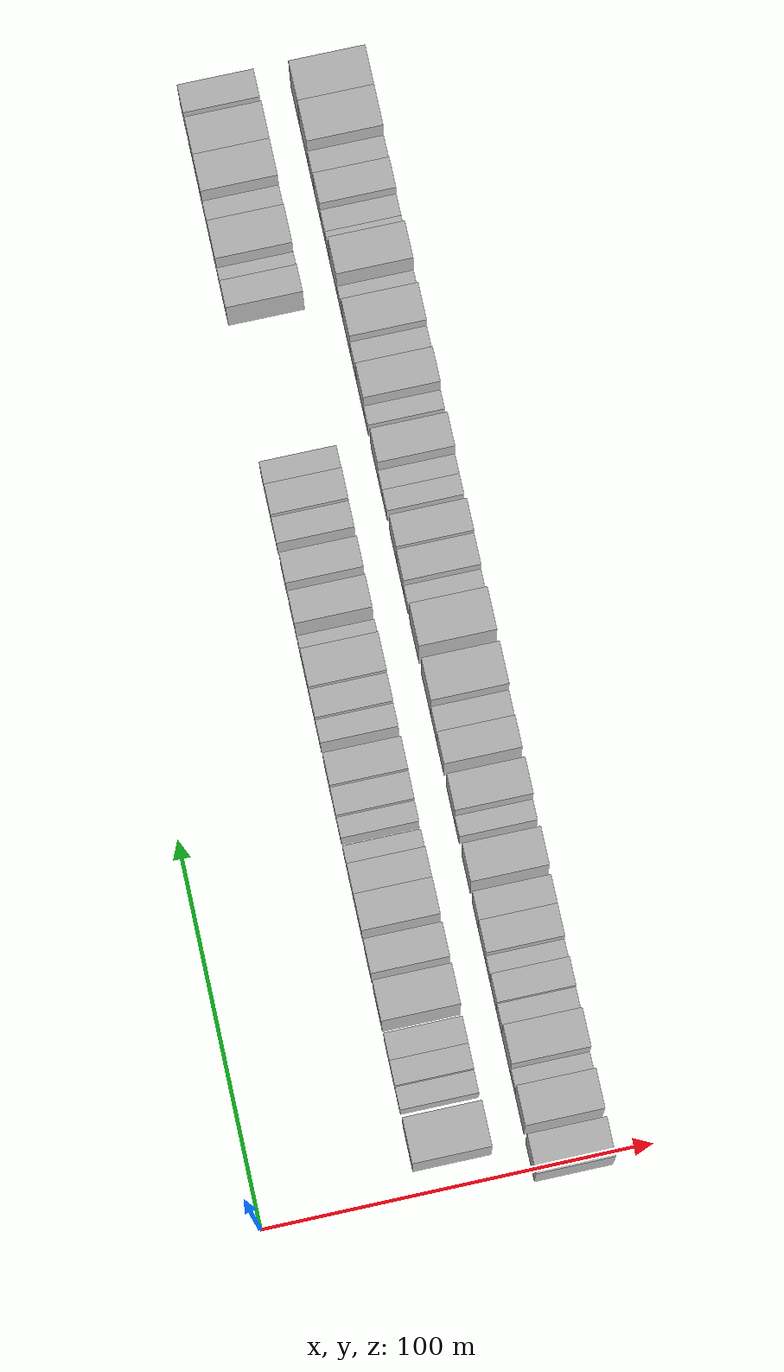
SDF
<sdf version="1.6">
 <world name="default">
  <model name="building_32">
   <static>1</static>
   <pose>50.0000 11.7142 0 0.000000 0.000000 0.000000</pose>
   <link name="link">
    <pose>0 0 12.00 0 0 0</pose>
    <collision name="collision"><geometry><box><size>20.0000 11.5697 24.0000</size></box></geometry></collision>
    <visual name="visual">
     <cast_shadows>0</cast_shadows>
     <geometry><box><size>20.0000 11.5697 24.0000</size></box></geometry>
     <material>
      <script>
       <uri>model://HANNAS_wall/materials/scripts</uri>
       <uri>model://HANNAS_wall/materials/textures</uri>
       <name>vrc/HANNAS_wall</name>
      </script>
     </material>
    </visual>
   </link>
  </model>
  <model name="building_33">
   <static>1</static>
   <pose>50.0000 23.4167 0 0.000000 0.000000 0.000000</pose>
   <link name="link">
    <pose>0 0 6.00 0 0 0</pose>
    <collision name="collision"><geometry><box><size>20.0000 5.8353 12.0000</size></box></geometry></collision>
    <visual name="visual">
     <cast_shadows>0</cast_shadows>
     <geometry><box><size>20.0000 5.8353 12.0000</size></box></geometry>
     <material>
      <script>
       <uri>model://HANNAS_wall/materials/scripts</uri>
       <uri>model://HANNAS_wall/materials/textures</uri>
       <name>vrc/HANNAS_wall</name>
      </script>
     </material>
    </visual>
   </link>
  </model>
  <model name="building_34">
   <static>1</static>
   <pose>50.0000 29.5625 0 0.000000 0.000000 0.000000</pose>
   <link name="link">
    <pose>0 0 7.50 0 0 0</pose>
    <collision name="collision"><geometry><box><size>20.0000 6.4564 15.0000</size></box></geometry></collision>
    <visual name="visual">
     <cast_shadows>0</cast_shadows>
     <geometry><box><size>20.0000 6.4564 15.0000</size></box></geometry>
     <material>
      <script>
       <uri>model://HANNAS_wall/materials/scripts</uri>
       <uri>model://HANNAS_wall/materials/textures</uri>
       <name>vrc/HANNAS_wall</name>
      </script>
     </material>
    </visual>
   </link>
  </model>
  <model name="building_35">
   <static>1</static>
   <pose>50.0000 36.2377 0 0.000000 0.000000 0.000000</pose>
   <link name="link">
    <pose>0 0 7.50 0 0 0</pose>
    <collision name="collision"><geometry><box><size>20.0000 6.8939 15.0000</size></box></geometry></collision>
    <visual name="visual">
     <cast_shadows>0</cast_shadows>
     <geometry><box><size>20.0000 6.8939 15.0000</size></box></geometry>
     <material>
      <script>
       <uri>model://HANNAS_wall/materials/scripts</uri>
       <uri>model://HANNAS_wall/materials/textures</uri>
       <name>vrc/HANNAS_wall</name>
      </script>
     </material>
    </visual>
   </link>
  </model>
  <model name="building_36">
   <static>1</static>
   <pose>50.0000 46.8793 0 0.000000 0.000000 0.000000</pose>
   <link name="link">
    <pose>0 0 12.00 0 0 0</pose>
    <collision name="collision"><geometry><box><size>20.0000 10.3893 24.0000</size></box></geometry></collision>
    <visual name="visual">
     <cast_shadows>0</cast_shadows>
     <geometry><box><size>20.0000 10.3893 24.0000</size></box></geometry>
     <material>
      <script>
       <uri>model://HANNAS_wall/materials/scripts</uri>
       <uri>model://HANNAS_wall/materials/textures</uri>
       <name>vrc/HANNAS_wall</name>
      </script>
     </material>
    </visual>
   </link>
  </model>
  <model name="building_37">
   <static>1</static>
   <pose>50.0000 58.5164 0 0.000000 0.000000 0.000000</pose>
   <link name="link">
    <pose>0 0 10.50 0 0 0</pose>
    <collision name="collision"><geometry><box><size>20.0000 8.8849 21.0000</size></box></geometry></collision>
    <visual name="visual">
     <cast_shadows>0</cast_shadows>
     <geometry><box><size>20.0000 8.8849 21.0000</size></box></geometry>
     <material>
      <script>
       <uri>model://HANNAS_wall/materials/scripts</uri>
       <uri>model://HANNAS_wall/materials/textures</uri>
       <name>vrc/HANNAS_wall</name>
      </script>
     </material>
    </visual>
   </link>
  </model>
  <model name="building_38">
   <static>1</static>
   <pose>50.0000 69.6701 0 0.000000 0.000000 0.000000</pose>
   <link name="link">
    <pose>0 0 10.50 0 0 0</pose>
    <collision name="collision"><geometry><box><size>20.0000 9.4225 21.0000</size></box></geometry></collision>
    <visual name="visual">
     <cast_shadows>0</cast_shadows>
     <geometry><box><size>20.0000 9.4225 21.0000</size></box></geometry>
     <material>
      <script>
       <uri>model://HANNAS_wall/materials/scripts</uri>
       <uri>model://HANNAS_wall/materials/textures</uri>
       <name>vrc/HANNAS_wall</name>
      </script>
     </material>
    </visual>
   </link>
  </model>
  <model name="building_39">
   <static>1</static>
   <pose>50.0000 78.4824 0 0.000000 0.000000 0.000000</pose>
   <link name="link">
    <pose>0 0 9.00 0 0 0</pose>
    <collision name="collision"><geometry><box><size>20.0000 8.2021 18.0000</size></box></geometry></collision>
    <visual name="visual">
     <cast_shadows>0</cast_shadows>
     <geometry><box><size>20.0000 8.2021 18.0000</size></box></geometry>
     <material>
      <script>
       <uri>model://HANNAS_wall/materials/scripts</uri>
       <uri>model://HANNAS_wall/materials/textures</uri>
       <name>vrc/HANNAS_wall</name>
      </script>
     </material>
    </visual>
   </link>
  </model>
  <model name="building_40">
   <static>1</static>
   <pose>50.0000 85.2810 0 0.000000 0.000000 0.000000</pose>
   <link name="link">
    <pose>0 0 6.00 0 0 0</pose>
    <collision name="collision"><geometry><box><size>20.0000 5.3951 12.0000</size></box></geometry></collision>
    <visual name="visual">
     <cast_shadows>0</cast_shadows>
     <geometry><box><size>20.0000 5.3951 12.0000</size></box></geometry>
     <material>
      <script>
       <uri>model://HANNAS_wall/materials/scripts</uri>
       <uri>model://HANNAS_wall/materials/textures</uri>
       <name>vrc/HANNAS_wall</name>
      </script>
     </material>
    </visual>
   </link>
  </model>
  <model name="building_41">
   <static>1</static>
   <pose>50.0000 92.6717 0 0.000000 0.000000 0.000000</pose>
   <link name="link">
    <pose>0 0 6.00 0 0 0</pose>
    <collision name="collision"><geometry><box><size>20.0000 5.3864 12.0000</size></box></geometry></collision>
    <visual name="visual">
     <cast_shadows>0</cast_shadows>
     <geometry><box><size>20.0000 5.3864 12.0000</size></box></geometry>
     <material>
      <script>
       <uri>model://HANNAS_wall/materials/scripts</uri>
       <uri>model://HANNAS_wall/materials/textures</uri>
       <name>vrc/HANNAS_wall</name>
      </script>
     </material>
    </visual>
   </link>
  </model>
  <model name="building_42">
   <static>1</static>
   <pose>50.0000 98.9908 0 0.000000 0.000000 0.000000</pose>
   <link name="link">
    <pose>0 0 7.50 0 0 0</pose>
    <collision name="collision"><geometry><box><size>20.0000 7.2517 15.0000</size></box></geometry></collision>
    <visual name="visual">
     <cast_shadows>0</cast_shadows>
     <geometry><box><size>20.0000 7.2517 15.0000</size></box></geometry>
     <material>
      <script>
       <uri>model://HANNAS_wall/materials/scripts</uri>
       <uri>model://HANNAS_wall/materials/textures</uri>
       <name>vrc/HANNAS_wall</name>
      </script>
     </material>
    </visual>
   </link>
  </model>
  <model name="building_43">
   <static>1</static>
   <pose>50.0000 106.8519 0 0.000000 0.000000 0.000000</pose>
   <link name="link">
    <pose>0 0 9.00 0 0 0</pose>
    <collision name="collision"><geometry><box><size>20.0000 8.4705 18.0000</size></box></geometry></collision>
    <visual name="visual">
     <cast_shadows>0</cast_shadows>
     <geometry><box><size>20.0000 8.4705 18.0000</size></box></geometry>
     <material>
      <script>
       <uri>model://HANNAS_wall/materials/scripts</uri>
       <uri>model://HANNAS_wall/materials/textures</uri>
       <name>vrc/HANNAS_wall</name>
      </script>
     </material>
    </visual>
   </link>
  </model>
  <model name="building_44">
   <static>1</static>
   <pose>50.0000 117.1174 0 0.000000 0.000000 0.000000</pose>
   <link name="link">
    <pose>0 0 7.50 0 0 0</pose>
    <collision name="collision"><geometry><box><size>20.0000 6.0605 15.0000</size></box></geometry></collision>
    <visual name="visual">
     <cast_shadows>0</cast_shadows>
     <geometry><box><size>20.0000 6.0605 15.0000</size></box></geometry>
     <material>
      <script>
       <uri>model://HANNAS_wall/materials/scripts</uri>
       <uri>model://HANNAS_wall/materials/textures</uri>
       <name>vrc/HANNAS_wall</name>
      </script>
     </material>
    </visual>
   </link>
  </model>
  <model name="building_45">
   <static>1</static>
   <pose>50.0000 123.8608 0 0.000000 0.000000 0.000000</pose>
   <link name="link">
    <pose>0 0 9.00 0 0 0</pose>
    <collision name="collision"><geometry><box><size>20.0000 7.4264 18.0000</size></box></geometry></collision>
    <visual name="visual">
     <cast_shadows>0</cast_shadows>
     <geometry><box><size>20.0000 7.4264 18.0000</size></box></geometry>
     <material>
      <script>
       <uri>model://HANNAS_wall/materials/scripts</uri>
       <uri>model://HANNAS_wall/materials/textures</uri>
       <name>vrc/HANNAS_wall</name>
      </script>
     </material>
    </visual>
   </link>
  </model>
  <model name="building_46">
   <static>1</static>
   <pose>50.0000 132.5873 0 0.000000 0.000000 0.000000</pose>
   <link name="link">
    <pose>0 0 10.50 0 0 0</pose>
    <collision name="collision"><geometry><box><size>20.0000 10.0266 21.0000</size></box></geometry></collision>
    <visual name="visual">
     <cast_shadows>0</cast_shadows>
     <geometry><box><size>20.0000 10.0266 21.0000</size></box></geometry>
     <material>
      <script>
       <uri>model://HANNAS_wall/materials/scripts</uri>
       <uri>model://HANNAS_wall/materials/textures</uri>
       <name>vrc/HANNAS_wall</name>
      </script>
     </material>
    </visual>
   </link>
  </model>
  <model name="building_47">
   <static>1</static>
   <pose>50.0000 140.1266 0 0.000000 0.000000 0.000000</pose>
   <link name="link">
    <pose>0 0 6.00 0 0 0</pose>
    <collision name="collision"><geometry><box><size>20.0000 5.0519 12.0000</size></box></geometry></collision>
    <visual name="visual">
     <cast_shadows>0</cast_shadows>
     <geometry><box><size>20.0000 5.0519 12.0000</size></box></geometry>
     <material>
      <script>
       <uri>model://HANNAS_wall/materials/scripts</uri>
       <uri>model://HANNAS_wall/materials/textures</uri>
       <name>vrc/HANNAS_wall</name>
      </script>
     </material>
    </visual>
   </link>
  </model>
  <model name="building_48">
   <static>1</static>
   <pose>50.0000 148.9408 0 0.000000 0.000000 0.000000</pose>
   <link name="link">
    <pose>0 0 9.00 0 0 0</pose>
    <collision name="collision"><geometry><box><size>20.0000 8.5766 18.0000</size></box></geometry></collision>
    <visual name="visual">
     <cast_shadows>0</cast_shadows>
     <geometry><box><size>20.0000 8.5766 18.0000</size></box></geometry>
     <material>
      <script>
       <uri>model://HANNAS_wall/materials/scripts</uri>
       <uri>model://HANNAS_wall/materials/textures</uri>
       <name>vrc/HANNAS_wall</name>
      </script>
     </material>
    </visual>
   </link>
  </model>
  <model name="building_49">
   <static>1</static>
   <pose>50.0000 159.2718 0 0.000000 0.000000 0.000000</pose>
   <link name="link">
    <pose>0 0 9.00 0 0 0</pose>
    <collision name="collision"><geometry><box><size>20.0000 8.0853 18.0000</size></box></geometry></collision>
    <visual name="visual">
     <cast_shadows>0</cast_shadows>
     <geometry><box><size>20.0000 8.0853 18.0000</size></box></geometry>
     <material>
      <script>
       <uri>model://HANNAS_wall/materials/scripts</uri>
       <uri>model://HANNAS_wall/materials/textures</uri>
       <name>vrc/HANNAS_wall</name>
      </script>
     </material>
    </visual>
   </link>
  </model>
  <model name="building_50">
   <static>1</static>
   <pose>50.0000 169.7689 0 0.000000 0.000000 0.000000</pose>
   <link name="link">
    <pose>0 0 7.50 0 0 0</pose>
    <collision name="collision"><geometry><box><size>20.0000 6.9091 15.0000</size></box></geometry></collision>
    <visual name="visual">
     <cast_shadows>0</cast_shadows>
     <geometry><box><size>20.0000 6.9091 15.0000</size></box></geometry>
     <material>
      <script>
       <uri>model://HANNAS_wall/materials/scripts</uri>
       <uri>model://HANNAS_wall/materials/textures</uri>
       <name>vrc/HANNAS_wall</name>
      </script>
     </material>
    </visual>
   </link>
  </model>
  <model name="building_51">
   <static>1</static>
   <pose>50.0000 177.2824 0 0.000000 0.000000 0.000000</pose>
   <link name="link">
    <pose>0 0 9.00 0 0 0</pose>
    <collision name="collision"><geometry><box><size>20.0000 8.1179 18.0000</size></box></geometry></collision>
    <visual name="visual">
     <cast_shadows>0</cast_shadows>
     <geometry><box><size>20.0000 8.1179 18.0000</size></box></geometry>
     <material>
      <script>
       <uri>model://HANNAS_wall/materials/scripts</uri>
       <uri>model://HANNAS_wall/materials/textures</uri>
       <name>vrc/HANNAS_wall</name>
      </script>
     </material>
    </visual>
   </link>
  </model>
  <model name="building_52">
   <static>1</static>
   <pose>50.0000 184.6182 0 0.000000 0.000000 0.000000</pose>
   <link name="link">
    <pose>0 0 7.50 0 0 0</pose>
    <collision name="collision"><geometry><box><size>20.0000 6.5537 15.0000</size></box></geometry></collision>
    <visual name="visual">
     <cast_shadows>0</cast_shadows>
     <geometry><box><size>20.0000 6.5537 15.0000</size></box></geometry>
     <material>
      <script>
       <uri>model://HANNAS_wall/materials/scripts</uri>
       <uri>model://HANNAS_wall/materials/textures</uri>
       <name>vrc/HANNAS_wall</name>
      </script>
     </material>
    </visual>
   </link>
  </model>
  <model name="building_53">
   <static>1</static>
   <pose>50.0000 231.8629 0 0.000000 0.000000 0.000000</pose>
   <link name="link">
    <pose>0 0 9.00 0 0 0</pose>
    <collision name="collision"><geometry><box><size>20.0000 7.3119 18.0000</size></box></geometry></collision>
    <visual name="visual">
     <cast_shadows>0</cast_shadows>
     <geometry><box><size>20.0000 7.3119 18.0000</size></box></geometry>
     <material>
      <script>
       <uri>model://HANNAS_wall/materials/scripts</uri>
       <uri>model://HANNAS_wall/materials/textures</uri>
       <name>vrc/HANNAS_wall</name>
      </script>
     </material>
    </visual>
   </link>
  </model>
  <model name="building_54">
   <static>1</static>
   <pose>50.0000 238.0434 0 0.000000 0.000000 0.000000</pose>
   <link name="link">
    <pose>0 0 6.00 0 0 0</pose>
    <collision name="collision"><geometry><box><size>20.0000 5.0492 12.0000</size></box></geometry></collision>
    <visual name="visual">
     <cast_shadows>0</cast_shadows>
     <geometry><box><size>20.0000 5.0492 12.0000</size></box></geometry>
     <material>
      <script>
       <uri>model://HANNAS_wall/materials/scripts</uri>
       <uri>model://HANNAS_wall/materials/textures</uri>
       <name>vrc/HANNAS_wall</name>
      </script>
     </material>
    </visual>
   </link>
  </model>
  <model name="building_55">
   <static>1</static>
   <pose>50.0000 245.7052 0 0.000000 0.000000 0.000000</pose>
   <link name="link">
    <pose>0 0 10.50 0 0 0</pose>
    <collision name="collision"><geometry><box><size>20.0000 10.2743 21.0000</size></box></geometry></collision>
    <visual name="visual">
     <cast_shadows>0</cast_shadows>
     <geometry><box><size>20.0000 10.2743 21.0000</size></box></geometry>
     <material>
      <script>
       <uri>model://HANNAS_wall/materials/scripts</uri>
       <uri>model://HANNAS_wall/materials/textures</uri>
       <name>vrc/HANNAS_wall</name>
      </script>
     </material>
    </visual>
   </link>
  </model>
  <model name="building_56">
   <static>1</static>
   <pose>50.0000 254.3147 0 0.000000 0.000000 0.000000</pose>
   <link name="link">
    <pose>0 0 7.50 0 0 0</pose>
    <collision name="collision"><geometry><box><size>20.0000 6.9448 15.0000</size></box></geometry></collision>
    <visual name="visual">
     <cast_shadows>0</cast_shadows>
     <geometry><box><size>20.0000 6.9448 15.0000</size></box></geometry>
     <material>
      <script>
       <uri>model://HANNAS_wall/materials/scripts</uri>
       <uri>model://HANNAS_wall/materials/textures</uri>
       <name>vrc/HANNAS_wall</name>
      </script>
     </material>
    </visual>
   </link>
  </model>
  <model name="building_57">
   <static>1</static>
   <pose>50.0000 262.7760 0 0.000000 0.000000 0.000000</pose>
   <link name="link">
    <pose>0 0 12.00 0 0 0</pose>
    <collision name="collision"><geometry><box><size>20.0000 9.9779 24.0000</size></box></geometry></collision>
    <visual name="visual">
     <cast_shadows>0</cast_shadows>
     <geometry><box><size>20.0000 9.9779 24.0000</size></box></geometry>
     <material>
      <script>
       <uri>model://HANNAS_wall/materials/scripts</uri>
       <uri>model://HANNAS_wall/materials/textures</uri>
       <name>vrc/HANNAS_wall</name>
      </script>
     </material>
    </visual>
   </link>
  </model>
  <model name="building_58">
   <static>1</static>
   <pose>50.0000 272.8071 0 0.000000 0.000000 0.000000</pose>
   <link name="link">
    <pose>0 0 12.00 0 0 0</pose>
    <collision name="collision"><geometry><box><size>20.0000 10.0843 24.0000</size></box></geometry></collision>
    <visual name="visual">
     <cast_shadows>0</cast_shadows>
     <geometry><box><size>20.0000 10.0843 24.0000</size></box></geometry>
     <material>
      <script>
       <uri>model://HANNAS_wall/materials/scripts</uri>
       <uri>model://HANNAS_wall/materials/textures</uri>
       <name>vrc/HANNAS_wall</name>
      </script>
     </material>
    </visual>
   </link>
  </model>
  <model name="building_59">
   <static>1</static>
   <pose>50.0000 284.6481 0 0.000000 0.000000 0.000000</pose>
   <link name="link">
    <pose>0 0 9.00 0 0 0</pose>
    <collision name="collision"><geometry><box><size>20.0000 7.5978 18.0000</size></box></geometry></collision>
    <visual name="visual">
     <cast_shadows>0</cast_shadows>
     <geometry><box><size>20.0000 7.5978 18.0000</size></box></geometry>
     <material>
      <script>
       <uri>model://HANNAS_wall/materials/scripts</uri>
       <uri>model://HANNAS_wall/materials/textures</uri>
       <name>vrc/HANNAS_wall</name>
      </script>
     </material>
    </visual>
   </link>
  </model>
  <model name="building_90">
   <static>1</static>
   <pose>79.0000 2.0427 0 0.000000 0.000000 0.000000</pose>
   <link name="link">
    <pose>0 0 12.00 0 0 0</pose>
    <collision name="collision"><geometry><box><size>20.0000 10.0423 24.0000</size></box></geometry></collision>
    <visual name="visual">
     <cast_shadows>0</cast_shadows>
     <geometry><box><size>20.0000 10.0423 24.0000</size></box></geometry>
     <material>
      <script>
       <uri>model://HANNAS_wall/materials/scripts</uri>
       <uri>model://HANNAS_wall/materials/textures</uri>
       <name>vrc/HANNAS_wall</name>
      </script>
     </material>
    </visual>
   </link>
  </model>
  <model name="building_91">
   <static>1</static>
   <pose>79.0000 14.1333 0 0.000000 0.000000 0.000000</pose>
   <link name="link">
    <pose>0 0 12.00 0 0 0</pose>
    <collision name="collision"><geometry><box><size>20.0000 10.1388 24.0000</size></box></geometry></collision>
    <visual name="visual">
     <cast_shadows>0</cast_shadows>
     <geometry><box><size>20.0000 10.1388 24.0000</size></box></geometry>
     <material>
      <script>
       <uri>model://HANNAS_wall/materials/scripts</uri>
       <uri>model://HANNAS_wall/materials/textures</uri>
       <name>vrc/HANNAS_wall</name>
      </script>
     </material>
    </visual>
   </link>
  </model>
  <model name="building_92">
   <static>1</static>
   <pose>79.0000 21.8661 0 0.000000 0.000000 0.000000</pose>
   <link name="link">
    <pose>0 0 6.00 0 0 0</pose>
    <collision name="collision"><geometry><box><size>20.0000 5.3268 12.0000</size></box></geometry></collision>
    <visual name="visual">
     <cast_shadows>0</cast_shadows>
     <geometry><box><size>20.0000 5.3268 12.0000</size></box></geometry>
     <material>
      <script>
       <uri>model://HANNAS_wall/materials/scripts</uri>
       <uri>model://HANNAS_wall/materials/textures</uri>
       <name>vrc/HANNAS_wall</name>
      </script>
     </material>
    </visual>
   </link>
  </model>
  <model name="building_93">
   <static>1</static>
   <pose>79.0000 29.5009 0 0.000000 0.000000 0.000000</pose>
   <link name="link">
    <pose>0 0 12.00 0 0 0</pose>
    <collision name="collision"><geometry><box><size>20.0000 9.9429 24.0000</size></box></geometry></collision>
    <visual name="visual">
     <cast_shadows>0</cast_shadows>
     <geometry><box><size>20.0000 9.9429 24.0000</size></box></geometry>
     <material>
      <script>
       <uri>model://HANNAS_wall/materials/scripts</uri>
       <uri>model://HANNAS_wall/materials/textures</uri>
       <name>vrc/HANNAS_wall</name>
      </script>
     </material>
    </visual>
   </link>
  </model>
  <model name="building_94">
   <static>1</static>
   <pose>79.0000 37.6089 0 0.000000 0.000000 0.000000</pose>
   <link name="link">
    <pose>0 0 7.50 0 0 0</pose>
    <collision name="collision"><geometry><box><size>20.0000 6.2732 15.0000</size></box></geometry></collision>
    <visual name="visual">
     <cast_shadows>0</cast_shadows>
     <geometry><box><size>20.0000 6.2732 15.0000</size></box></geometry>
     <material>
      <script>
       <uri>model://HANNAS_wall/materials/scripts</uri>
       <uri>model://HANNAS_wall/materials/textures</uri>
       <name>vrc/HANNAS_wall</name>
      </script>
     </material>
    </visual>
   </link>
  </model>
  <model name="building_95">
   <static>1</static>
   <pose>79.0000 44.4142 0 0.000000 0.000000 0.000000</pose>
   <link name="link">
    <pose>0 0 9.00 0 0 0</pose>
    <collision name="collision"><geometry><box><size>20.0000 7.3374 18.0000</size></box></geometry></collision>
    <visual name="visual">
     <cast_shadows>0</cast_shadows>
     <geometry><box><size>20.0000 7.3374 18.0000</size></box></geometry>
     <material>
      <script>
       <uri>model://HANNAS_wall/materials/scripts</uri>
       <uri>model://HANNAS_wall/materials/textures</uri>
       <name>vrc/HANNAS_wall</name>
      </script>
     </material>
    </visual>
   </link>
  </model>
  <model name="building_96">
   <static>1</static>
   <pose>79.0000 50.7081 0 0.000000 0.000000 0.000000</pose>
   <link name="link">
    <pose>0 0 6.00 0 0 0</pose>
    <collision name="collision"><geometry><box><size>20.0000 5.2504 12.0000</size></box></geometry></collision>
    <visual name="visual">
     <cast_shadows>0</cast_shadows>
     <geometry><box><size>20.0000 5.2504 12.0000</size></box></geometry>
     <material>
      <script>
       <uri>model://HANNAS_wall/materials/scripts</uri>
       <uri>model://HANNAS_wall/materials/textures</uri>
       <name>vrc/HANNAS_wall</name>
      </script>
     </material>
    </visual>
   </link>
  </model>
  <model name="building_97">
   <static>1</static>
   <pose>79.0000 57.5254 0 0.000000 0.000000 0.000000</pose>
   <link name="link">
    <pose>0 0 9.00 0 0 0</pose>
    <collision name="collision"><geometry><box><size>20.0000 8.3843 18.0000</size></box></geometry></collision>
    <visual name="visual">
     <cast_shadows>0</cast_shadows>
     <geometry><box><size>20.0000 8.3843 18.0000</size></box></geometry>
     <material>
      <script>
       <uri>model://HANNAS_wall/materials/scripts</uri>
       <uri>model://HANNAS_wall/materials/textures</uri>
       <name>vrc/HANNAS_wall</name>
      </script>
     </material>
    </visual>
   </link>
  </model>
  <model name="building_98">
   <static>1</static>
   <pose>79.0000 65.3954 0 0.000000 0.000000 0.000000</pose>
   <link name="link">
    <pose>0 0 9.00 0 0 0</pose>
    <collision name="collision"><geometry><box><size>20.0000 7.3556 18.0000</size></box></geometry></collision>
    <visual name="visual">
     <cast_shadows>0</cast_shadows>
     <geometry><box><size>20.0000 7.3556 18.0000</size></box></geometry>
     <material>
      <script>
       <uri>model://HANNAS_wall/materials/scripts</uri>
       <uri>model://HANNAS_wall/materials/textures</uri>
       <name>vrc/HANNAS_wall</name>
      </script>
     </material>
    </visual>
   </link>
  </model>
  <model name="building_99">
   <static>1</static>
   <pose>79.0000 76.0162 0 0.000000 0.000000 0.000000</pose>
   <link name="link">
    <pose>0 0 10.50 0 0 0</pose>
    <collision name="collision"><geometry><box><size>20.0000 9.8861 21.0000</size></box></geometry></collision>
    <visual name="visual">
     <cast_shadows>0</cast_shadows>
     <geometry><box><size>20.0000 9.8861 21.0000</size></box></geometry>
     <material>
      <script>
       <uri>model://HANNAS_wall/materials/scripts</uri>
       <uri>model://HANNAS_wall/materials/textures</uri>
       <name>vrc/HANNAS_wall</name>
      </script>
     </material>
    </visual>
   </link>
  </model>
  <model name="building_100">
   <static>1</static>
   <pose>79.0000 86.6463 0 0.000000 0.000000 0.000000</pose>
   <link name="link">
    <pose>0 0 6.00 0 0 0</pose>
    <collision name="collision"><geometry><box><size>20.0000 5.3741 12.0000</size></box></geometry></collision>
    <visual name="visual">
     <cast_shadows>0</cast_shadows>
     <geometry><box><size>20.0000 5.3741 12.0000</size></box></geometry>
     <material>
      <script>
       <uri>model://HANNAS_wall/materials/scripts</uri>
       <uri>model://HANNAS_wall/materials/textures</uri>
       <name>vrc/HANNAS_wall</name>
      </script>
     </material>
    </visual>
   </link>
  </model>
  <model name="building_101">
   <static>1</static>
   <pose>79.0000 94.0636 0 0.000000 0.000000 0.000000</pose>
   <link name="link">
    <pose>0 0 10.50 0 0 0</pose>
    <collision name="collision"><geometry><box><size>20.0000 9.4604 21.0000</size></box></geometry></collision>
    <visual name="visual">
     <cast_shadows>0</cast_shadows>
     <geometry><box><size>20.0000 9.4604 21.0000</size></box></geometry>
     <material>
      <script>
       <uri>model://HANNAS_wall/materials/scripts</uri>
       <uri>model://HANNAS_wall/materials/textures</uri>
       <name>vrc/HANNAS_wall</name>
      </script>
     </material>
    </visual>
   </link>
  </model>
  <model name="building_102">
   <static>1</static>
   <pose>79.0000 105.9681 0 0.000000 0.000000 0.000000</pose>
   <link name="link">
    <pose>0 0 9.00 0 0 0</pose>
    <collision name="collision"><geometry><box><size>20.0000 8.3485 18.0000</size></box></geometry></collision>
    <visual name="visual">
     <cast_shadows>0</cast_shadows>
     <geometry><box><size>20.0000 8.3485 18.0000</size></box></geometry>
     <material>
      <script>
       <uri>model://HANNAS_wall/materials/scripts</uri>
       <uri>model://HANNAS_wall/materials/textures</uri>
       <name>vrc/HANNAS_wall</name>
      </script>
     </material>
    </visual>
   </link>
  </model>
  <model name="building_103">
   <static>1</static>
   <pose>79.0000 113.6608 0 0.000000 0.000000 0.000000</pose>
   <link name="link">
    <pose>0 0 7.50 0 0 0</pose>
    <collision name="collision"><geometry><box><size>20.0000 7.0369 15.0000</size></box></geometry></collision>
    <visual name="visual">
     <cast_shadows>0</cast_shadows>
     <geometry><box><size>20.0000 7.0369 15.0000</size></box></geometry>
     <material>
      <script>
       <uri>model://HANNAS_wall/materials/scripts</uri>
       <uri>model://HANNAS_wall/materials/textures</uri>
       <name>vrc/HANNAS_wall</name>
      </script>
     </material>
    </visual>
   </link>
  </model>
  <model name="building_104">
   <static>1</static>
   <pose>79.0000 122.7035 0 0.000000 0.000000 0.000000</pose>
   <link name="link">
    <pose>0 0 12.00 0 0 0</pose>
    <collision name="collision"><geometry><box><size>20.0000 11.0485 24.0000</size></box></geometry></collision>
    <visual name="visual">
     <cast_shadows>0</cast_shadows>
     <geometry><box><size>20.0000 11.0485 24.0000</size></box></geometry>
     <material>
      <script>
       <uri>model://HANNAS_wall/materials/scripts</uri>
       <uri>model://HANNAS_wall/materials/textures</uri>
       <name>vrc/HANNAS_wall</name>
      </script>
     </material>
    </visual>
   </link>
  </model>
  <model name="building_105">
   <static>1</static>
   <pose>79.0000 136.8146 0 0.000000 0.000000 0.000000</pose>
   <link name="link">
    <pose>0 0 12.00 0 0 0</pose>
    <collision name="collision"><geometry><box><size>20.0000 11.1739 24.0000</size></box></geometry></collision>
    <visual name="visual">
     <cast_shadows>0</cast_shadows>
     <geometry><box><size>20.0000 11.1739 24.0000</size></box></geometry>
     <material>
      <script>
       <uri>model://HANNAS_wall/materials/scripts</uri>
       <uri>model://HANNAS_wall/materials/textures</uri>
       <name>vrc/HANNAS_wall</name>
      </script>
     </material>
    </visual>
   </link>
  </model>
  <model name="building_106">
   <static>1</static>
   <pose>79.0000 146.9332 0 0.000000 0.000000 0.000000</pose>
   <link name="link">
    <pose>0 0 6.00 0 0 0</pose>
    <collision name="collision"><geometry><box><size>20.0000 5.0632 12.0000</size></box></geometry></collision>
    <visual name="visual">
     <cast_shadows>0</cast_shadows>
     <geometry><box><size>20.0000 5.0632 12.0000</size></box></geometry>
     <material>
      <script>
       <uri>model://HANNAS_wall/materials/scripts</uri>
       <uri>model://HANNAS_wall/materials/textures</uri>
       <name>vrc/HANNAS_wall</name>
      </script>
     </material>
    </visual>
   </link>
  </model>
  <model name="building_107">
   <static>1</static>
   <pose>79.0000 153.6059 0 0.000000 0.000000 0.000000</pose>
   <link name="link">
    <pose>0 0 9.00 0 0 0</pose>
    <collision name="collision"><geometry><box><size>20.0000 8.2823 18.0000</size></box></geometry></collision>
    <visual name="visual">
     <cast_shadows>0</cast_shadows>
     <geometry><box><size>20.0000 8.2823 18.0000</size></box></geometry>
     <material>
      <script>
       <uri>model://HANNAS_wall/materials/scripts</uri>
       <uri>model://HANNAS_wall/materials/textures</uri>
       <name>vrc/HANNAS_wall</name>
      </script>
     </material>
    </visual>
   </link>
  </model>
  <model name="building_108">
   <static>1</static>
   <pose>79.0000 161.9780 0 0.000000 0.000000 0.000000</pose>
   <link name="link">
    <pose>0 0 10.50 0 0 0</pose>
    <collision name="collision"><geometry><box><size>20.0000 8.4619 21.0000</size></box></geometry></collision>
    <visual name="visual">
     <cast_shadows>0</cast_shadows>
     <geometry><box><size>20.0000 8.4619 21.0000</size></box></geometry>
     <material>
      <script>
       <uri>model://HANNAS_wall/materials/scripts</uri>
       <uri>model://HANNAS_wall/materials/textures</uri>
       <name>vrc/HANNAS_wall</name>
      </script>
     </material>
    </visual>
   </link>
  </model>
  <model name="building_109">
   <static>1</static>
   <pose>79.0000 171.9873 0 0.000000 0.000000 0.000000</pose>
   <link name="link">
    <pose>0 0 6.00 0 0 0</pose>
    <collision name="collision"><geometry><box><size>20.0000 5.5567 12.0000</size></box></geometry></collision>
    <visual name="visual">
     <cast_shadows>0</cast_shadows>
     <geometry><box><size>20.0000 5.5567 12.0000</size></box></geometry>
     <material>
      <script>
       <uri>model://HANNAS_wall/materials/scripts</uri>
       <uri>model://HANNAS_wall/materials/textures</uri>
       <name>vrc/HANNAS_wall</name>
      </script>
     </material>
    </visual>
   </link>
  </model>
  <model name="building_110">
   <static>1</static>
   <pose>79.0000 177.3625 0 0.000000 0.000000 0.000000</pose>
   <link name="link">
    <pose>0 0 6.00 0 0 0</pose>
    <collision name="collision"><geometry><box><size>20.0000 5.1935 12.0000</size></box></geometry></collision>
    <visual name="visual">
     <cast_shadows>0</cast_shadows>
     <geometry><box><size>20.0000 5.1935 12.0000</size></box></geometry>
     <material>
      <script>
       <uri>model://HANNAS_wall/materials/scripts</uri>
       <uri>model://HANNAS_wall/materials/textures</uri>
       <name>vrc/HANNAS_wall</name>
      </script>
     </material>
    </visual>
   </link>
  </model>
  <model name="building_111">
   <static>1</static>
   <pose>79.0000 184.4590 0 0.000000 0.000000 0.000000</pose>
   <link name="link">
    <pose>0 0 10.50 0 0 0</pose>
    <collision name="collision"><geometry><box><size>20.0000 8.9995 21.0000</size></box></geometry></collision>
    <visual name="visual">
     <cast_shadows>0</cast_shadows>
     <geometry><box><size>20.0000 8.9995 21.0000</size></box></geometry>
     <material>
      <script>
       <uri>model://HANNAS_wall/materials/scripts</uri>
       <uri>model://HANNAS_wall/materials/textures</uri>
       <name>vrc/HANNAS_wall</name>
      </script>
     </material>
    </visual>
   </link>
  </model>
  <model name="building_112">
   <static>1</static>
   <pose>79.0000 194.5146 0 0.000000 0.000000 0.000000</pose>
   <link name="link">
    <pose>0 0 6.00 0 0 0</pose>
    <collision name="collision"><geometry><box><size>20.0000 5.1118 12.0000</size></box></geometry></collision>
    <visual name="visual">
     <cast_shadows>0</cast_shadows>
     <geometry><box><size>20.0000 5.1118 12.0000</size></box></geometry>
     <material>
      <script>
       <uri>model://HANNAS_wall/materials/scripts</uri>
       <uri>model://HANNAS_wall/materials/textures</uri>
       <name>vrc/HANNAS_wall</name>
      </script>
     </material>
    </visual>
   </link>
  </model>
  <model name="building_113">
   <static>1</static>
   <pose>79.0000 201.7091 0 0.000000 0.000000 0.000000</pose>
   <link name="link">
    <pose>0 0 10.50 0 0 0</pose>
    <collision name="collision"><geometry><box><size>20.0000 9.2771 21.0000</size></box></geometry></collision>
    <visual name="visual">
     <cast_shadows>0</cast_shadows>
     <geometry><box><size>20.0000 9.2771 21.0000</size></box></geometry>
     <material>
      <script>
       <uri>model://HANNAS_wall/materials/scripts</uri>
       <uri>model://HANNAS_wall/materials/textures</uri>
       <name>vrc/HANNAS_wall</name>
      </script>
     </material>
    </visual>
   </link>
  </model>
  <model name="building_114">
   <static>1</static>
   <pose>79.0000 209.8970 0 0.000000 0.000000 0.000000</pose>
   <link name="link">
    <pose>0 0 7.50 0 0 0</pose>
    <collision name="collision"><geometry><box><size>20.0000 7.0987 15.0000</size></box></geometry></collision>
    <visual name="visual">
     <cast_shadows>0</cast_shadows>
     <geometry><box><size>20.0000 7.0987 15.0000</size></box></geometry>
     <material>
      <script>
       <uri>model://HANNAS_wall/materials/scripts</uri>
       <uri>model://HANNAS_wall/materials/textures</uri>
       <name>vrc/HANNAS_wall</name>
      </script>
     </material>
    </visual>
   </link>
  </model>
  <model name="building_115">
   <static>1</static>
   <pose>79.0000 218.4565 0 0.000000 0.000000 0.000000</pose>
   <link name="link">
    <pose>0 0 10.50 0 0 0</pose>
    <collision name="collision"><geometry><box><size>20.0000 10.0203 21.0000</size></box></geometry></collision>
    <visual name="visual">
     <cast_shadows>0</cast_shadows>
     <geometry><box><size>20.0000 10.0203 21.0000</size></box></geometry>
     <material>
      <script>
       <uri>model://HANNAS_wall/materials/scripts</uri>
       <uri>model://HANNAS_wall/materials/textures</uri>
       <name>vrc/HANNAS_wall</name>
      </script>
     </material>
    </visual>
   </link>
  </model>
  <model name="building_116">
   <static>1</static>
   <pose>79.0000 226.3455 0 0.000000 0.000000 0.000000</pose>
   <link name="link">
    <pose>0 0 6.00 0 0 0</pose>
    <collision name="collision"><geometry><box><size>20.0000 5.7576 12.0000</size></box></geometry></collision>
    <visual name="visual">
     <cast_shadows>0</cast_shadows>
     <geometry><box><size>20.0000 5.7576 12.0000</size></box></geometry>
     <material>
      <script>
       <uri>model://HANNAS_wall/materials/scripts</uri>
       <uri>model://HANNAS_wall/materials/textures</uri>
       <name>vrc/HANNAS_wall</name>
      </script>
     </material>
    </visual>
   </link>
  </model>
  <model name="building_117">
   <static>1</static>
   <pose>79.0000 234.1954 0 0.000000 0.000000 0.000000</pose>
   <link name="link">
    <pose>0 0 12.00 0 0 0</pose>
    <collision name="collision"><geometry><box><size>20.0000 9.9422 24.0000</size></box></geometry></collision>
    <visual name="visual">
     <cast_shadows>0</cast_shadows>
     <geometry><box><size>20.0000 9.9422 24.0000</size></box></geometry>
     <material>
      <script>
       <uri>model://HANNAS_wall/materials/scripts</uri>
       <uri>model://HANNAS_wall/materials/textures</uri>
       <name>vrc/HANNAS_wall</name>
      </script>
     </material>
    </visual>
   </link>
  </model>
  <model name="building_118">
   <static>1</static>
   <pose>79.0000 241.5914 0 0.000000 0.000000 0.000000</pose>
   <link name="link">
    <pose>0 0 6.00 0 0 0</pose>
    <collision name="collision"><geometry><box><size>20.0000 4.8498 12.0000</size></box></geometry></collision>
    <visual name="visual">
     <cast_shadows>0</cast_shadows>
     <geometry><box><size>20.0000 4.8498 12.0000</size></box></geometry>
     <material>
      <script>
       <uri>model://HANNAS_wall/materials/scripts</uri>
       <uri>model://HANNAS_wall/materials/textures</uri>
       <name>vrc/HANNAS_wall</name>
      </script>
     </material>
    </visual>
   </link>
  </model>
  <model name="building_119">
   <static>1</static>
   <pose>79.0000 246.9399 0 0.000000 0.000000 0.000000</pose>
   <link name="link">
    <pose>0 0 6.00 0 0 0</pose>
    <collision name="collision"><geometry><box><size>20.0000 5.8474 12.0000</size></box></geometry></collision>
    <visual name="visual">
     <cast_shadows>0</cast_shadows>
     <geometry><box><size>20.0000 5.8474 12.0000</size></box></geometry>
     <material>
      <script>
       <uri>model://HANNAS_wall/materials/scripts</uri>
       <uri>model://HANNAS_wall/materials/textures</uri>
       <name>vrc/HANNAS_wall</name>
      </script>
     </material>
    </visual>
   </link>
  </model>
  <model name="building_120">
   <static>1</static>
   <pose>79.0000 254.0075 0 0.000000 0.000000 0.000000</pose>
   <link name="link">
    <pose>0 0 9.00 0 0 0</pose>
    <collision name="collision"><geometry><box><size>20.0000 8.2877 18.0000</size></box></geometry></collision>
    <visual name="visual">
     <cast_shadows>0</cast_shadows>
     <geometry><box><size>20.0000 8.2877 18.0000</size></box></geometry>
     <material>
      <script>
       <uri>model://HANNAS_wall/materials/scripts</uri>
       <uri>model://HANNAS_wall/materials/textures</uri>
       <name>vrc/HANNAS_wall</name>
      </script>
     </material>
    </visual>
   </link>
  </model>
  <model name="building_121">
   <static>1</static>
   <pose>79.0000 261.5442 0 0.000000 0.000000 0.000000</pose>
   <link name="link">
    <pose>0 0 7.50 0 0 0</pose>
    <collision name="collision"><geometry><box><size>20.0000 6.7857 15.0000</size></box></geometry></collision>
    <visual name="visual">
     <cast_shadows>0</cast_shadows>
     <geometry><box><size>20.0000 6.7857 15.0000</size></box></geometry>
     <material>
      <script>
       <uri>model://HANNAS_wall/materials/scripts</uri>
       <uri>model://HANNAS_wall/materials/textures</uri>
       <name>vrc/HANNAS_wall</name>
      </script>
     </material>
    </visual>
   </link>
  </model>
  <model name="building_122">
   <static>1</static>
   <pose>79.0000 270.4710 0 0.000000 0.000000 0.000000</pose>
   <link name="link">
    <pose>0 0 12.00 0 0 0</pose>
    <collision name="collision"><geometry><box><size>20.0000 11.0678 24.0000</size></box></geometry></collision>
    <visual name="visual">
     <cast_shadows>0</cast_shadows>
     <geometry><box><size>20.0000 11.0678 24.0000</size></box></geometry>
     <material>
      <script>
       <uri>model://HANNAS_wall/materials/scripts</uri>
       <uri>model://HANNAS_wall/materials/textures</uri>
       <name>vrc/HANNAS_wall</name>
      </script>
     </material>
    </visual>
   </link>
  </model>
  <model name="building_123">
   <static>1</static>
   <pose>79.0000 281.3671 0 0.000000 0.000000 0.000000</pose>
   <link name="link">
    <pose>0 0 12.00 0 0 0</pose>
    <collision name="collision"><geometry><box><size>20.0000 10.7245 24.0000</size></box></geometry></collision>
    <visual name="visual">
     <cast_shadows>0</cast_shadows>
     <geometry><box><size>20.0000 10.7245 24.0000</size></box></geometry>
     <material>
      <script>
       <uri>model://HANNAS_wall/materials/scripts</uri>
       <uri>model://HANNAS_wall/materials/textures</uri>
       <name>vrc/HANNAS_wall</name>
      </script>
     </material>
    </visual>
   </link>
  </model>
 </world>
</sdf>
